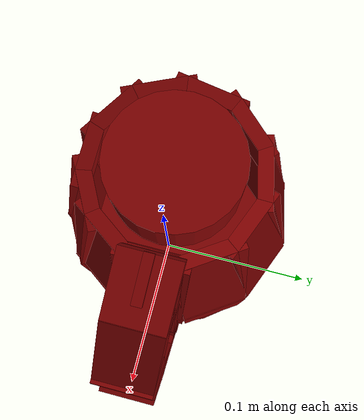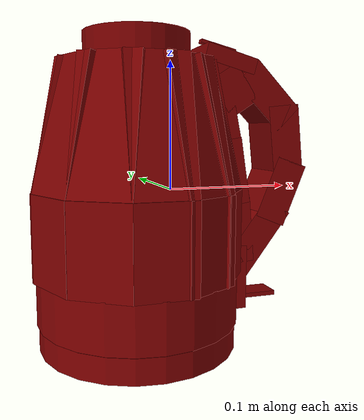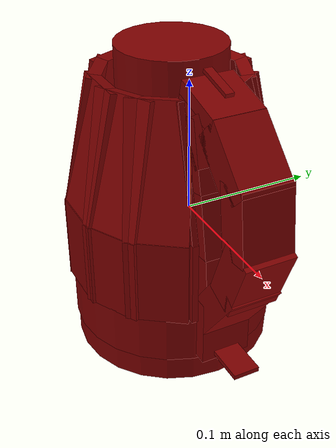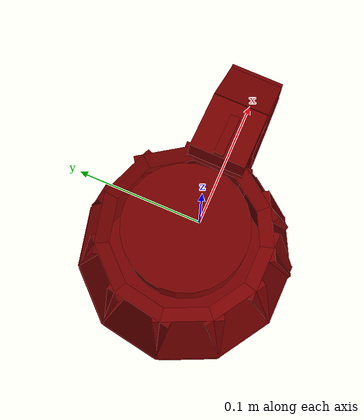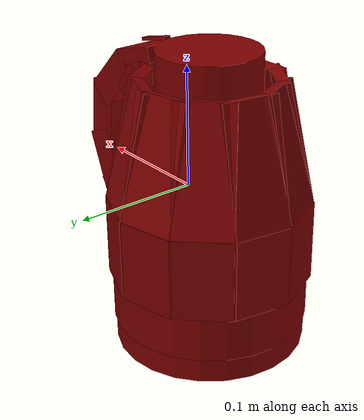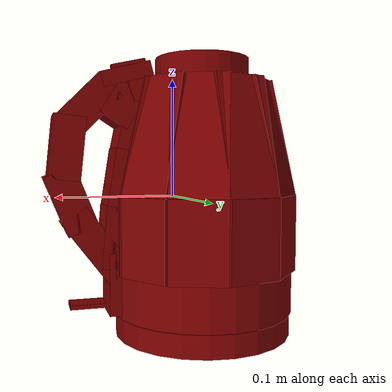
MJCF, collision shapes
<?xml version='1.0' encoding='UTF-8'?>
<mujoco model="model">
  <option timestep="0.002" gravity="0.0 0.0 -9.81"/>
  <compiler angle="radian"/>
  <asset>
    <mesh file="visuals/button_lid.obj" name="button_lid_vis"/>
    <mesh file="visuals/Body001.obj" name="Body001_vis"/>
    <mesh file="visuals/kettle_main.obj" name="kettle_main_vis"/>
    <mesh file="visuals/kettle_main_Clear.obj" name="kettle_main_Clear_vis"/>
    <mesh file="visuals/lid.obj" name="lid_vis"/>
    <mesh file="visuals/switch.obj" name="switch_vis"/>
    <texture file="visuals/T_BC001.png" name="Body001_material" type="2d"/>
    <material name="Body001_material" rgba="1 1 1 1.0" texture="Body001_material" shininess="0.1" specular="5"/>
    <texture file="visuals/T_BC001.png" name="kettle_main_material" type="2d"/>
    <material name="kettle_main_material" rgba="1 1 1 1.0" texture="kettle_main_material" shininess="0.1" specular="5"/>
    <texture file="visuals/T_BC001.png" name="button_lid_material" type="2d"/>
    <material name="button_lid_material" rgba="1 1 1 1.0" texture="button_lid_material" shininess="0.1" specular="5"/>
    <texture file="visuals/T_BC001.png" name="kettle_main_Clear_material" type="2d"/>
    <material name="kettle_main_Clear_material" rgba="1 1 1 0.800000011920929" texture="kettle_main_Clear_material" shininess="0.141421377658844" specular="0.3103448502657381"/>
    <texture file="visuals/T_BC001.png" name="lid_material" type="2d"/>
    <material name="lid_material" rgba="1 1 1 1.0" texture="lid_material" shininess="0.1" specular="5"/>
    <texture file="visuals/T_BC001.png" name="switch_material" type="2d"/>
    <material name="switch_material" rgba="1 1 1 1.0" texture="switch_material" shininess="0.1" specular="5"/>
  </asset>
  <default>
    <default class="visual">
      <geom conaffinity="0" contype="0" group="1" type="mesh"/>
    </default>
    <default class="collision">
      <geom group="0" rgba="0.5 0 0 0.5"/>
    </default>
    <default class="spawn">
      <geom group="0" rgba="1 1 1 0.5" contype="0" conaffinity="0"/>
      <site group="0" rgba="1 1 1 0.5"/>
    </default>
    <default class="region">
      <geom group="1" conaffinity="0" contype="0" rgba="0 1 0 0" mass="0"/>
    </default>
  </default>
  <worldbody>
    <body>
      <body name="object">
        <geom mesh="Body001_vis" type="mesh" solimp="0.998 0.998 0.001" solref="0.001 1" friction="0.95 0.3 0.1" class="visual" material="Body001_material"/>
        <geom type="cylinder" pos="-0.027411337941884995 -0.00014148722402751446 -0.11141645163297653" size="0.07713119685649872 0.009560033679008484" quat="1.0 0.0 0.0 0.0" class="collision"/>
        <body name="kettle_main">
          <geom mesh="kettle_main_vis" type="mesh" solimp="0.998 0.998 0.001" solref="0.001 1" friction="0.95 0.3 0.1" class="visual" material="kettle_main_material"/>
          <geom class="collision" type="box" pos="0.043139271438121796 0.00021091324742883444 0.10062777996063232" size="0.021188074722886086 0.019086692482233047 0.00618768809363246" quat="0.9914178252220154 0.0 0.13073121011257172 0.0" name="handle_1"/>
          <geom class="collision" type="box" pos="0.07470306754112244 0.00021091324742883444 0.07349132001399994" size="0.02591952495276928 0.019086692482233047 0.013031343929469585" quat="0.9236460328102112 0.0 0.3832467198371887 0.0" name="handle_3"/>
          <geom type="box" pos="0.038333527743816376 0.00021091324742883444 0.0646439790725708" size="0.02591952495276928 0.019086692482233047 0.008350091055035591" quat="0.7764915227890015 0.0 0.6301277279853821 0.0" class="collision"/>
          <geom class="collision" type="box" pos="0.0913977101445198 0.00021091324742883444 0.040479276329278946" size="0.02591952495276928 0.019086692482233047 0.013031343929469585" quat="0.7436996698379517 0.0 0.6685138940811157 0.0" name="handle_main"/>
          <geom class="collision" type="box" pos="0.08862174302339554 0.00021091324742883444 -0.0022946903482079506" size="0.02591952495276928 0.019086692482233047 0.013031343929469585" quat="0.5591312050819397 0.0 0.8290791511535645 0.0" name="handle_4"/>
          <geom class="collision" type="box" pos="0.06790471822023392 0.00021091324742883444 -0.03869720548391342" size="0.03122704289853573 0.019086692482233047 0.012154500000178814" quat="0.4453384280204773 0.0 0.8953623175621033 0.0" name="handle_5"/>
          <geom type="box" pos="0.04824516922235489 0.00021091324742883444 0.014211696572601795" size="0.02591952495276928 0.019086692482233047 0.008350091055035591" quat="0.7611410617828369 0.0 0.6485863924026489 0.0" class="collision"/>
          <geom type="box" pos="0.05432259663939476 0.00021091324742883444 -0.032876066863536835" size="0.02591952495276928 0.019086692482233047 0.008350091055035591" quat="0.7370997667312622 0.0 0.6757839322090149 0.0" class="collision"/>
          <geom type="box" pos="0.05268525704741478 0.00021091324742883444 -0.07152266800403595" size="0.0060615320689976215 0.019086692482233047 0.025983070954680443" quat="1.0 0.0 0.0 0.0" class="collision"/>
          <geom class="collision" type="box" pos="0.045523203909397125 0.00021091324742883444 0.0769275352358818" size="0.016873879358172417 0.019086692482233047 0.013031343929469585" quat="0.8781300187110901 0.0 0.478422075510025 0.0" name="handle_2"/>
          <geom type="box" pos="0.03180955722928047 0.00021091324742883444 0.08913789689540863" size="0.009536889381706715 0.019086692482233047 0.013031343929469585" quat="0.6158644556999207 0.0 0.7878521084785461 0.0" class="collision"/>
          <geom type="cylinder" pos="-0.027411337941884995 -0.00014148722402751446 -0.0824677124619484" size="0.0785139873623848 0.018464617431163788" quat="1.0 0.0 0.0 0.0" class="collision"/>
          <body name="button_lid">
            <joint axis="-0.2840818762779236 0.0 -0.9588000774383545" pos="0.038537777960300446 -0.00021366938017308712 0.11094487458467484" limited="true" name="button_lid_joint" range="0.0 0.0015" type="slide" damping="1" frictionloss="1" armature=".01" stiffness="0.05" springref="-2"/>
            <geom mesh="button_lid_vis" type="mesh" solimp="0.998 0.998 0.001" solref="0.001 1" friction="0.95 0.3 0.1" class="visual" material="button_lid_material"/>
            <geom class="collision" type="box" pos="0.03889802098274231 -0.00021366938017308712 0.1121906265616417" size="0.014842482283711433 0.003208839800208807 0.001418435713276267" quat="0.9931944608688354 0.0 0.11646802723407745 0.0" name="button_lid_main"/>
          </body>
          <body name="kettle_main_Clear">
            <geom mesh="kettle_main_Clear_vis" type="mesh" solimp="0.998 0.998 0.001" solref="0.001 1" friction="0.95 0.3 0.1" class="visual" material="kettle_main_Clear_material"/>
            <geom type="box" pos="-0.02687045931816101 -0.07368562370538712 -0.03169490769505501" size="0.023114826530218124 0.004641236737370491 0.03293635696172714" quat="1.0 0.0 0.0 0.0" class="collision"/>
            <geom type="box" pos="-0.026870455592870712 -0.06244158372282982 0.049160268157720566" size="0.023114824667572975 0.00464123860001564 0.04993676394224167" quat="0.9941283464431763 -0.1082073450088501 -0.0 0.0" class="collision"/>
            <geom type="box" pos="-0.060415118932724 -0.05307438224554062 0.049160268157720566" size="0.023114824667572975 0.00464123860001564 0.04993676394224167" quat="0.954690158367157 -0.10391447693109512 0.03017573617398739 -0.2772325873374939" class="collision"/>
            <geom type="box" pos="-0.06643757969141006 -0.06256955862045288 -0.03169490769505501" size="0.023114826530218124 0.00464123860001564 0.03293635696172714" quat="0.9603288769721985 0.0 -0.0 -0.27886995673179626" class="collision"/>
            <geom type="box" pos="-0.09424497932195663 -0.03125660866498947 -0.03169490769505501" size="0.023114826530218124 0.00464123860001564 0.03293635696172714" quat="0.8415003418922424 0.0 -0.0 -0.5402565598487854" class="collision"/>
            <geom type="box" pos="-0.08402130752801895 -0.026576334610581398 0.049160268157720566" size="0.023114824667572975 0.00464123860001564 0.04993676394224167" quat="0.8365593552589417 -0.09105635434389114 0.05845963582396507 -0.5370844006538391" class="collision"/>
            <geom type="box" pos="-0.08917441219091415 0.009867627173662186 0.049160268157720566" size="0.023114826530218124 0.00464123860001564 0.04993676394224167" quat="0.6411194801330566 -0.06978342682123184 0.08269856125116348 -0.7597743272781372" class="collision"/>
            <geom type="box" pos="-0.10025826096534729 0.011758790351450443 -0.03169490769505501" size="0.023114828392863274 0.00464123860001564 0.03293635696172714" quat="0.6449061036109924 0.0 -0.0 -0.764261782169342" class="collision"/>
            <geom type="box" pos="-0.08117441087961197 0.0505029559135437 -0.03169490769505501" size="0.023114826530218124 0.00464123860001564 0.03293635696172714" quat="0.3926233649253845 0.0 -0.0 -0.9196993708610535" class="collision"/>
            <geom type="box" pos="-0.07305407524108887 0.04272552579641342 0.049160268157720566" size="0.023114824667572975 0.00464123860001564 0.04993676394224167" quat="0.3903179168701172 -0.04248465970158577 0.09951813519001007 -0.9142992496490479" class="collision"/>
            <geom type="box" pos="-0.04157891869544983 0.060840267688035965 0.049160268157720566" size="0.023114824667572975 0.004641239065676928 0.04993676394224167" quat="0.10759035497903824 -0.01171080395579338 0.1075715497136116 -0.9882891774177551" class="collision"/>
            <geom type="box" pos="-0.04399840533733368 0.07182089239358902 -0.03169490769505501" size="0.023114826530218124 0.00464123860001564 0.03293635696172714" quat="0.10822581499814987 0.0 -0.0 -0.9941263198852539" class="collision"/>
            <geom type="box" pos="-0.0009369682520627975 0.06872864812612534 -0.03169490769505501" size="0.023114826530218124 0.00464123860001564 0.03293635696172714" quat="0.18773965537548065 0.0 0.0 0.9822188019752502" class="collision"/>
            <geom type="box" pos="-0.005083801690489054 0.05827724188566208 0.049160268157720566" size="0.023114824667572975 0.004641239065676928 0.04993676394224167" quat="0.18663731217384338 -0.020314807072281837 -0.1062832847237587 0.976451575756073" class="collision"/>
            <geom type="box" pos="0.023972077295184135 0.035334523767232895 0.049160268157720566" size="0.023114824667572975 0.00464123860001564 0.04993676394224167" quat="0.4677036702632904 -0.050907790660858154 -0.0954839363694191 0.8772368431091309" class="collision"/>
            <geom type="box" pos="0.03330794721841812 0.04160107672214508 -0.03169490769505501" size="0.023114826530218124 0.00464123860001564 0.03293635696172714" quat="0.4704661965370178 0.0 0.0 0.8824180364608765" class="collision"/>
            <geom type="box" pos="0.04617307335138321 -0.00041814439464360476 -0.03169490769505501" size="0.023114826530218124 0.00464123860001564 0.03293635696172714" quat="0.7121827602386475 0.0 0.0 0.7019941210746765" class="collision"/>
            <geom type="box" pos="0.03493022173643112 -0.0002561284927651286 0.049160268157720566" size="0.023114824667572975 0.00464123860001564 0.04993676394224167" quat="0.7080011367797852 -0.07706322520971298 -0.07596074044704437 0.6978722214698792" class="collision"/>
            <geom type="box" pos="0.023652678355574608 -0.035795554518699646 0.049160268157720566" size="0.023114824667572975 0.00464123860001564 0.04993676394224167" quat="0.8840618133544922 -0.09622674435377121 -0.04948921129107475 0.4546712338924408" class="collision"/>
            <geom type="box" pos="0.03279901295900345 -0.04233564808964729 -0.03169490769505501" size="0.023114826530218124 0.00464123860001564 0.03293635696172714" quat="0.889283299446106 0.0 0.0 0.4573568105697632" class="collision"/>
            <geom type="box" pos="0.007360944524407387 -0.06491312384605408 -0.03169490769505501" size="0.023114826530218124 0.00464123860001564 0.03293635696172714" quat="0.9708279371261597 0.0 0.0 0.23977723717689514" class="collision"/>
            <geom type="box" pos="0.002126123523339629 -0.05496200919151306 0.049160268157720566" size="0.023114824667572975 0.00464123860001564 0.04993676394224167" quat="0.9651275873184204 -0.10505039244890213 -0.025945579633116722 0.23836936056613922" class="collision"/>
          </body>
          <body name="lid">
            <joint axis="0.0 1.0 0.0" pos="0.018651749938726425 -1.6279518604278564e-06 0.11513517051935196" limited="true" name="lid_joint" range="0.0 1.5707963267948966" type="hinge" damping="1" frictionloss="0.1" armature=".01" stiffness="0.05" springref="-5.5"/>
            <geom mesh="lid_vis" type="mesh" solimp="0.998 0.998 0.001" solref="0.001 1" friction="0.95 0.3 0.1" class="visual" material="lid_material"/>
            <geom class="collision" type="cylinder" pos="-0.026940740644931793 -1.6279518604278564e-06 0.10010033845901489" size="0.04084323412179947 0.018784377723932266" quat="1.0 0.0 0.0 0.0" name="lid_main"/>
          </body>
          <body name="switch">
            <joint axis="0.0 1.0 0.0" pos="0.05468204990029335 -0.00029036635532975197 -0.09035534411668777" limited="true" name="switch_joint" range="0.0 0.2617993877991494" type="hinge" damping="1" frictionloss="1" armature=".01" stiffness="0.05" springref="-3"/>
            <geom mesh="switch_vis" type="mesh" solimp="0.998 0.998 0.001" solref="0.001 1" friction="0.95 0.3 0.1" class="visual" material="switch_material"/>
            <geom class="collision" type="box" pos="0.07512793689966202 -0.0002831017191056162 -0.09035534411668777" size="0.014685453847050667 0.010064838454127312 0.001832139678299427" quat="1.0 0.0 0.0 0.0" name="switch_main"/>
          </body>
        </body>
        <geom class="region" name="reg_main" type="box" pos="1.862645149230957e-09 0.0 0.0" size="0.1065677980184555 0.07904344594478607 0.12214959955215454"/>
      </body>
    </body>
  </worldbody>
  <actuator>
    <motor name="button_lid_joint_actuator" joint="button_lid_joint" gear="0.5"/>
    <motor name="lid_joint_actuator" joint="lid_joint" gear="0.5"/>
    <motor name="switch_joint_actuator" joint="switch_joint" gear="0.5"/>
  </actuator>
</mujoco>
